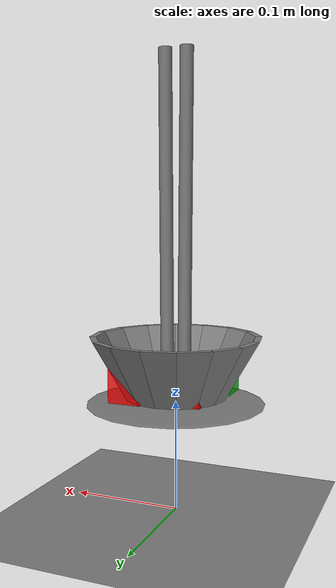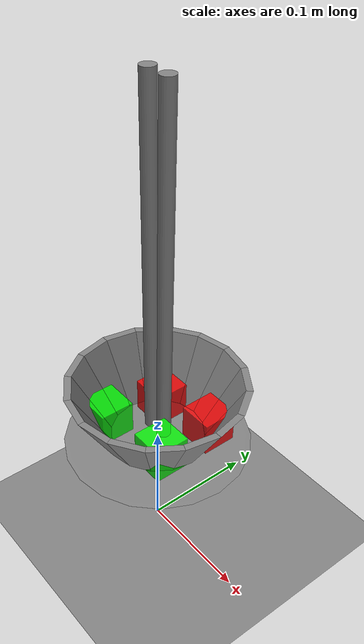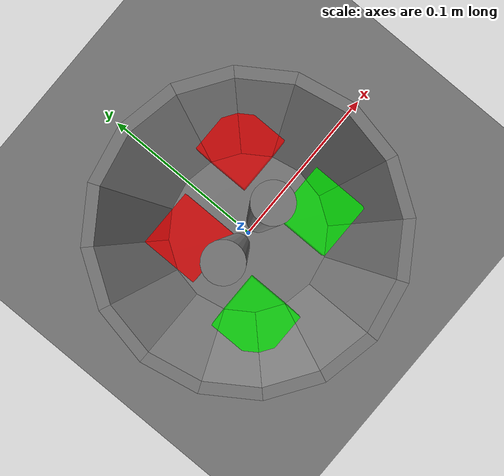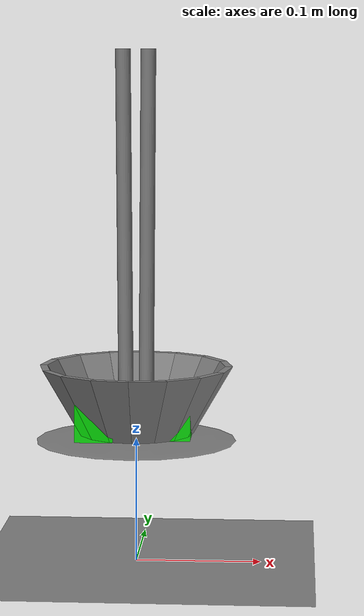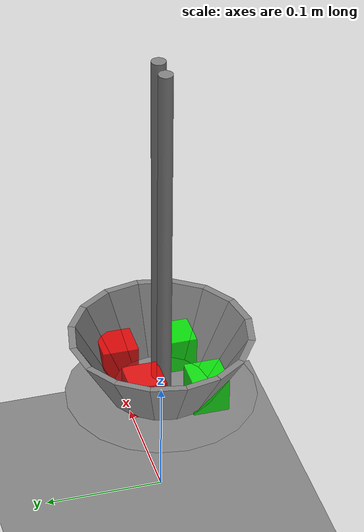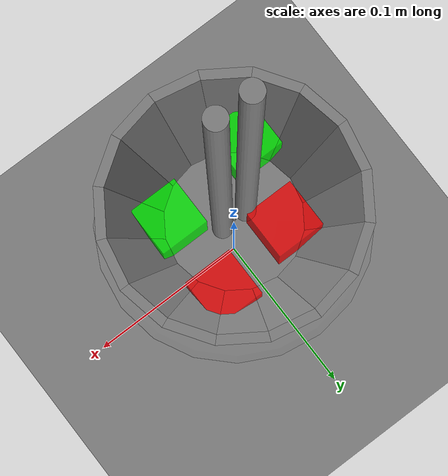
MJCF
<?xml version="1.0"?>
<mujoco model="stir-v1">
  <include file="stir_header.xml" />
  <worldbody>
    <include file="stir_worldbody.xml" />
    <include file="stir_bowl.xml" />
    <include file="stir_ingredients_15cube4.xml" />
  </worldbody>
  <include file="stir_contact.xml" />
  <include file="stir_actuator_position_xy.xml" />
</mujoco>

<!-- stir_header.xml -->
<mujoco>
  <option timestep="0.0025" />
  <asset>
    <mesh file="../meshes/cooking_bowl_bottom.stl" name="cooking_bowl_bottom" />
    <mesh file="../meshes/cooking_bowl_fragment.stl" name="cooking_bowl_fragment" />
  </asset>
  <default>
    <joint armature="100.0" damping="300" limited="true" />
  </default>
</mujoco>

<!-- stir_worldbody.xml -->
<mujoco>
  <light name="light0" directional="true" diffuse=".3 .3 .3" pos="-1 -1 1" dir="1 1 -1" />
  <light name="light1" directional="true" diffuse=".3 .3 .3" pos="1 -1 1" dir="-1 1 -1" />
  <light name="light2" directional="true" diffuse=".3 .3 .3" pos="0 1 1" dir="0 -1 -1" />
  <site name="world" pos="0 0 0" size="0.0001" />
  <geom name="floor" pos="0 0 0" size="1.0 1.0 .1" type="plane" condim="3" />
  <!-- refer to https://github.com/deepmind/mujoco/blob/main/test/engine/testdata/refsite.xml -->
  <body name="tools" pos="0 0 0.11">
    <joint name="joint_tool_position_x" type="slide" pos="0 0 0" axis="1 0 0" range="-10.0 10.0" />
    <joint name="joint_tool_position_y" type="slide" pos="0 0 0" axis="0 1 0" range="-10.0 10.0" />
    <joint name="joint_tool_position_z" type="slide" pos="0 0 0" axis="0 0 1" range="-10.0 10.0" />
    <joint type="ball" />
    <site name="site_tools" pos="0 0 0" size="0.001" />
    <body name="hoge" pos="0 0 0">
      <geom name="geom_tool1" type="cylinder" size="0.006" fromto="0.01 0 0.3 0.008 0 0" />
      <geom name="geom_tool2" type="cylinder" size="0.006" fromto="-0.01 0 0.3 -0.008 0 0" />
    </body>
  </body>
</mujoco>

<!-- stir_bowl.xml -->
<mujoco>
  <body name="bowl" pos="0 0 0.099">
    <geom name="geom_bowl_bottom0" type="ellipsoid" size="0.08 0.08 0.001" pos="0 0 0" />
    <geom name="geom_bowl_fragment0" type="mesh" mesh="cooking_bowl_fragment" pos="0 0 0" euler="0 0 0.0" />
    <geom name="geom_bowl_fragment1" type="mesh" mesh="cooking_bowl_fragment" pos="0 0 0" euler="0 0 22.5" />
    <geom name="geom_bowl_fragment2" type="mesh" mesh="cooking_bowl_fragment" pos="0 0 0" euler="0 0 45.0" />
    <geom name="geom_bowl_fragment3" type="mesh" mesh="cooking_bowl_fragment" pos="0 0 0" euler="0 0 67.5" />
    <geom name="geom_bowl_fragment4" type="mesh" mesh="cooking_bowl_fragment" pos="0 0 0" euler="0 0 90.0" />
    <geom name="geom_bowl_fragment5" type="mesh" mesh="cooking_bowl_fragment" pos="0 0 0" euler="0 0 112.5" />
    <geom name="geom_bowl_fragment6" type="mesh" mesh="cooking_bowl_fragment" pos="0 0 0" euler="0 0 135.0" />
    <geom name="geom_bowl_fragment7" type="mesh" mesh="cooking_bowl_fragment" pos="0 0 0" euler="0 0 157.5" />
    <geom name="geom_bowl_fragment8" type="mesh" mesh="cooking_bowl_fragment" pos="0 0 0" euler="0 0 180.0" />
    <geom name="geom_bowl_fragment9" type="mesh" mesh="cooking_bowl_fragment" pos="0 0 0" euler="0 0 202.5" />
    <geom name="geom_bowl_fragment10" type="mesh" mesh="cooking_bowl_fragment" pos="0 0 0" euler="0 0 225.0" />
    <geom name="geom_bowl_fragment11" type="mesh" mesh="cooking_bowl_fragment" pos="0 0 0"
    euler="0 0 247.49999999999997" />
    <geom name="geom_bowl_fragment12" type="mesh" mesh="cooking_bowl_fragment" pos="0 0 0" euler="0 0 270.0" />
    <geom name="geom_bowl_fragment13" type="mesh" mesh="cooking_bowl_fragment" pos="0 0 0" euler="0 0 292.5" />
    <geom name="geom_bowl_fragment14" type="mesh" mesh="cooking_bowl_fragment" pos="0 0 0" euler="0 0 315.0" />
    <geom name="geom_bowl_fragment15" type="mesh" mesh="cooking_bowl_fragment" pos="0 0 0" euler="0 0 337.5" />
  </body>
</mujoco>

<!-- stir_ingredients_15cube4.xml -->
<mujoco>
  <body name="ingredient0" pos="0.03 0.03 0.12">
    <joint name="joint_ingredient0" type="free" />
    <geom name="geom_ingredient0" type="box" size="0.015 0.015 0.015" rgba="1.0 0 0 0.8" />
  </body>
  <body name="ingredient1" pos="-0.02 0.02 0.12">
    <freejoint name="joint_ingredient1" />
    <geom name="geom_ingredient1" type="box" size="0.015 0.015 0.015" rgba="1.0 0 0 0.8" />
  </body>
  <body name="ingredient2" pos="0.03 -0.02 0.12">
    <freejoint name="joint_ingredient2" />
    <geom name="geom_ingredient2" type="box" size="0.015 0.015 0.015" rgba="0 1.0 0 0.8" />
  </body>
  <body name="ingredient3" pos="-0.03 -0.03 0.12">
    <freejoint name="joint_ingredient3" />
    <geom name="geom_ingredient3" type="box" size="0.015 0.015 0.015" rgba="0 1.0 0 0.8" />
  </body>
</mujoco>

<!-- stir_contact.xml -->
<mujoco>
  <contact>
    <pair name="contact_pair0" geom1="geom_bowl_bottom0" geom2="geom_ingredient0" friction="1 1 0.005 0.1 0.1" />
    <pair name="contact_pair1" geom1="geom_bowl_bottom0" geom2="geom_ingredient1" friction="1 1 0.005 0.1 0.1" />
    <pair name="contact_pair2" geom1="geom_bowl_bottom0" geom2="geom_ingredient2" friction="1 1 0.005 0.1 0.1" />
    <pair name="contact_pair3" geom1="geom_bowl_bottom0" geom2="geom_ingredient3" friction="1 1 0.005 0.1 0.1" />
  </contact>
</mujoco>

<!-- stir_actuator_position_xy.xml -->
<mujoco>
  <actuator>
    <position name="x" site="site_tools" refsite="world" gear="1 0 0 0 0 0" kp="100" />
    <position name="y" site="site_tools" refsite="world" gear="0 1 0 0 0 0" kp="100" />
  </actuator>
</mujoco>
